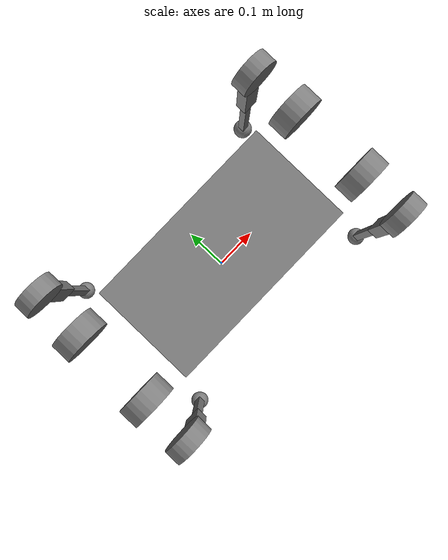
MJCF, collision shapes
<mujoco model="jamal">
  <compiler angle="radian" meshdir="../dae" autolimits="true"/>
  <option cone="elliptic" impratio="100"/>
  <default>
    <default class="jamal">
      <geom friction="0.4" margin="0.001" condim="1"/>
      <joint damping="0.1" armature="0.01" frictionloss="0.2"/>
      <motor ctrlrange="-33.5 33.5"/>
      <default class="abduction">
        <joint axis="1 0 0" range="-0.802851455917 0.802851455917"/>
      </default>
      <default class="hip">
        <joint axis="0 1 0" range="-1.0471975512 4.18879020479"/>
      </default>
      <default class="knee">
        <joint axis="0 1 0" range="-2.69653369433 -0.916297857297"/>
      </default>
      <default class="visual">
        <geom type="mesh" contype="0" conaffinity="0" group="2"/>
      </default>
      <default class="collision">
        <geom group="3"/>
        <default class="foot">
          <geom priority="1" condim="6" friction="0.4 0.02 0.01" type="sphere"/>
        </default>
      </default>
    </default>
  </default>
  <asset>
    <material name="black" rgba="0 0 0 1"/>
    <material name="white" rgba="1 1 1 1"/>
    <material name="gray" rgba="0.2 0.2 0.2 1"/>
    <material name="metal" rgba="0.9 0.95 0.95 1"/>
    <material name="jamal_dark" rgba="0.12 0.15 0.2 1"/>
    <mesh name="base" file="base.dae"/>
    <mesh name="hip" file="hip.dae"/>
    <mesh name="thigh" file="thigh.dae"/>
    <mesh name="thigh_mirror" file="thigh_mirror.dae"/>
    <mesh name="calf" file="calf.dae"/>
    <mesh name="foot" file="foot.dae"/>
  </asset>
  <worldbody>
    <body name="base_link" pos="0 0 0.46" childclass="jamal">
      <inertial mass="12.8185384756311" pos="0 0 0" fullinertia="0.0565667940678 0.0364645326398 0.0737588756462 -8.54731557026e-06 3.41160127654e-05 -4.86965244293e-06"/>
      <freejoint/>
      <geom mesh="base" material="white" class="visual"/>
      <geom size="0.1881 0.1 0.057" type="box" class="collision"/>
      <site name="imu" pos="0 0 0"/>
      <body name="FR_hip" pos="0.2699 -0.08028 0">
        <inertial mass="0.933762854916433" pos="0 0 0" fullinertia="0.000832273911083 0.00106512043176 0.000803680416601 -2.01742652907e-06 -9.96248193967e-07 3.27660400511e-06"/>
        <joint name="FR_hip_joint" class="abduction" range="-0.802851455917 0.802851455917"/>
        <geom class="visual" mesh="hip" material="white" pos="0 0 0" quat="4.632679488e-05 0.999999998927 0 0"/>
        <geom class="collision" type="cylinder" size="0.046 0.02" pos="0 0 0" quat="0.707106781187 0.707106781187 0 0"/>
        <body name="FR_thigh" pos="0 -0.10755 0">
          <inertial mass="1.32134262348697" pos="0 0 0" fullinertia="0.002628808989 0.00316091750464 0.00121962195057 -3.07530366786e-07 -6.61219112394e-05 -4.01609105248e-05"/>
          <joint name="FR_thigh_joint" class="hip" range="-1.0471975512 4.18879020479"/>
          <geom class="visual" mesh="thigh_mirror" material="white" pos="0 0 0"/>
          <geom class="collision" type="box" size="0.1125 0.01225 0.017" pos="0 0 -0.1125" quat="0.707106781187 0 0.707106781187 0"/>
          <geom class="collision" type="cylinder" size="0.041 0.016" pos="0 0.008 0" quat="0.707106781187 0.707106781187 0 0"/>
          <body name="FR_calf" pos="0 0 -0.225">
            <inertial mass="0.12879265462489" pos="0 0 0" fullinertia="0.000445341853266 0.000465686753688 2.3427896518e-05 -7.71823686634e-09 7.55836697902e-05 4.84096470395e-09"/>
            <joint name="FR_calf_joint" class="knee" range="-2.69653369433 -0.916297857297"/>
            <geom class="visual" mesh="calf" material="white" pos="0 0 0"/>
            <geom class="collision" type="box" size="0.115 0.008 0.008" pos="0 0 -0.1175" quat="0.707106781187 0 0.707106781187 0"/>
            <body name="FR_foot" pos="0 0 -0.23">
              <inertial mass="0.06" fullinertia="6.936e-06 6.936e-06 6.936e-06 0 0 0"/>
              <geom class="visual" mesh="foot" material="white" pos="0 0 0"/>
              <geom class="collision" type="sphere" size="0.02" pos="0 0 0"/>
            </body>
          </body>
        </body>
      </body>
      <body name="FL_hip" pos="0.2699 0.08028 0">
        <inertial mass="0.933762854916433" pos="0 0 0" fullinertia="0.000832273911083 0.00106512043176 0.000803680416601 2.01742652907e-06 -9.96248193967e-07 -3.27660400511e-06"/>
        <joint name="FL_hip_joint" class="abduction" range="-0.802851455917 0.802851455917"/>
        <geom class="visual" mesh="hip" material="white" pos="0 0 0"/>
        <geom class="collision" type="cylinder" size="0.046 0.02" pos="0 0 0" quat="0.707106781187 0.707106781187 0 0"/>
        <body name="FL_thigh" pos="0 0.10755 0">
          <inertial mass="1.32134262348697" pos="0 0 0" fullinertia="0.002628808989 0.00316091750464 0.00121962195057 3.07530366786e-07 -6.61219112394e-05 4.01609105248e-05"/>
          <joint name="FL_thigh_joint" class="hip" range="-1.0471975512 4.18879020479"/>
          <geom class="visual" mesh="thigh" material="white" pos="0 0 0"/>
          <geom class="collision" type="box" size="0.1125 0.01225 0.017" pos="0 0 -0.1125" quat="0.707106781187 0 0.707106781187 0"/>
          <geom class="collision" type="cylinder" size="0.041 0.016" pos="0 -0.008 0" quat="0.707106781187 0.707106781187 0 0"/>
          <body name="FL_calf" pos="0 0 -0.225">
            <inertial mass="0.12879265462489" pos="0 0 0" fullinertia="0.000445341853266 0.000465686753688 2.3427896518e-05 -7.71823686634e-09 7.55836697902e-05 4.84096470395e-09"/>
            <joint name="FL_calf_joint" class="knee" range="-2.69653369433 -0.916297857297"/>
            <geom class="visual" mesh="calf" material="white" pos="0 0 0"/>
            <geom class="collision" type="box" size="0.115 0.008 0.008" pos="0 0 -0.1175" quat="0.707106781187 0 0.707106781187 0"/>
            <body name="FL_foot" pos="0 0 -0.23">
              <inertial mass="0.06" fullinertia="6.936e-06 6.936e-06 6.936e-06 0 0 0"/>
              <geom class="visual" mesh="foot" material="white" pos="0 0 0"/>
              <geom class="collision" type="sphere" size="0.022" pos="0 0 0"/>
            </body>
          </body>
        </body>
      </body>
      <body name="RR_hip" pos="-0.2699 -0.08028 0">
        <inertial mass="0.933762854916433" pos="0 0 0" fullinertia="0.000832273911083 0.00106512043176 0.000803680416601 2.01742652907e-06 9.96248193967e-07 3.27660400511e-06"/>
        <joint name="RR_hip_joint" class="abduction" range="-0.802851455917 0.802851455917"/>
        <geom class="visual" mesh="hip" material="white" pos="0 0 0" quat="2.14617192385e-09 4.63267948302e-05 4.63267948302e-05 -0.999999997854"/>
        <geom class="collision" type="cylinder" size="0.046 0.02" pos="0 0 0" quat="0.707106781187 0.707106781187 0 0"/>
        <body name="RR_thigh" pos="0 -0.10755 0">
          <inertial mass="1.32134262348697" pos="0 0 0" fullinertia="0.002628808989 0.00316091750464 0.00121962195057 -3.07530366786e-07 -6.61219112394e-05 -4.01609105248e-05"/>
          <joint name="RR_thigh_joint" class="hip" range="-1.0471975512 4.18879020479"/>
          <geom class="visual" mesh="thigh_mirror" material="white" pos="0 0 0"/>
          <geom class="collision" type="box" size="0.1125 0.01225 0.017" pos="0 0 -0.1125" quat="0.707106781187 0 0.707106781187 0"/>
          <geom class="collision" type="cylinder" size="0.041 0.016" pos="0 0.008 0" quat="0.707106781187 0.707106781187 0 0"/>
          <body name="RR_calf" pos="0 0 -0.225">
            <inertial mass="0.12879265462489" pos="0 0 0" fullinertia="0.000445341853266 0.000465686753688 2.3427896518e-05 -7.71823686634e-09 7.55836697902e-05 4.84096470395e-09"/>
            <joint name="RR_calf_joint" class="knee" range="-2.69653369433 -0.916297857297"/>
            <geom class="visual" mesh="calf" material="white" pos="0 0 0"/>
            <geom class="collision" type="box" size="0.115 0.008 0.008" pos="0 0 -0.1175" quat="0.707106781187 0 0.707106781187 0"/>
            <body name="RR_foot" pos="0 0 -0.23">
              <inertial mass="0.06" fullinertia="6.936e-06 6.936e-06 6.936e-06 0 0 0"/>
              <geom class="visual" mesh="foot" material="white" pos="0 0 0"/>
              <geom class="collision" type="sphere" size="0.02" pos="0 0 0"/>
            </body>
          </body>
        </body>
      </body>
      <body name="RL_hip" pos="-0.2699 0.08028 0">
        <inertial mass="0.933762854916433" pos="0 0 0" fullinertia="0.000832273911083 0.00106512043176 0.000803680416601 -2.01742652907e-06 9.96248193967e-07 -3.27660400511e-06"/>
        <joint name="RL_hip_joint" class="abduction" range="-0.802851455917 0.802851455917"/>
        <geom class="visual" mesh="hip" material="white" pos="0 0 0" quat="4.632679488e-05 0 0.999999998927 0"/>
        <geom class="collision" type="cylinder" size="0.046 0.02" pos="0 0 0" quat="0.707106781187 0.707106781187 0 0"/>
        <body name="RL_thigh" pos="0 0.10755 0">
          <inertial mass="1.32134262348697" pos="0 0 0" fullinertia="0.002628808989 0.00316091750464 0.00121962195057 3.07530366786e-07 -6.61219112394e-05 4.01609105248e-05"/>
          <joint name="RL_thigh_joint" class="hip" range="-1.0471975512 4.18879020479"/>
          <geom class="visual" mesh="thigh" material="white" pos="0 0 0"/>
          <geom class="collision" type="box" size="0.1125 0.01225 0.017" pos="0 0 -0.1125" quat="0.707106781187 0 0.707106781187 0"/>
          <geom class="collision" type="cylinder" size="0.041 0.016" pos="0 -0.008 0" quat="0.707106781187 0.707106781187 0 0"/>
          <body name="RL_calf" pos="0 0 -0.225">
            <inertial mass="0.12879265462489" pos="0 0 0" fullinertia="0.000445341853266 0.000465686753688 2.3427896518e-05 -7.71823686634e-09 7.55836697902e-05 4.84096470395e-09"/>
            <joint name="RL_calf_joint" class="knee" range="-2.69653369433 -0.916297857297"/>
            <geom class="visual" mesh="calf" material="white" pos="0 0 0"/>
            <geom class="collision" type="box" size="0.115 0.008 0.008" pos="0 0 -0.1175" quat="0.707106781187 0 0.707106781187 0"/>
            <body name="RL_foot" pos="0 0 -0.23">
              <inertial mass="0.06" fullinertia="6.936e-06 6.936e-06 6.936e-06 0 0 0"/>
              <geom class="visual" mesh="foot" material="white" pos="0 0 0"/>
              <geom class="collision" type="sphere" size="0.02" pos="0 0 0"/>
            </body>
          </body>
        </body>
      </body>
    </body>
  </worldbody>
  <actuator>
    <motor class="abduction" name="FR_hip" joint="FR_hip_joint"/>
    <motor class="hip" name="FR_thigh" joint="FR_thigh_joint"/>
    <motor class="knee" name="FR_calf" joint="FR_calf_joint"/>
    <motor class="abduction" name="FL_hip" joint="FL_hip_joint"/>
    <motor class="hip" name="FL_thigh" joint="FL_thigh_joint"/>
    <motor class="knee" name="FL_calf" joint="FL_calf_joint"/>
    <motor class="abduction" name="RR_hip" joint="RR_hip_joint"/>
    <motor class="hip" name="RR_thigh" joint="RR_thigh_joint"/>
    <motor class="knee" name="RR_calf" joint="RR_calf_joint"/>
    <motor class="abduction" name="RL_hip" joint="RL_hip_joint"/>
    <motor class="hip" name="RL_thigh" joint="RL_thigh_joint"/>
    <motor class="knee" name="RL_calf" joint="RL_calf_joint"/>
  </actuator>
  <sensor>
    <jointpos name="FR_hip_pos" joint="FR_hip_joint"/>
    <jointpos name="FR_thigh_pos" joint="FR_thigh_joint"/>
    <jointpos name="FR_calf_pos" joint="FR_calf_joint"/>
    <jointpos name="FL_hip_pos" joint="FL_hip_joint"/>
    <jointpos name="FL_thigh_pos" joint="FL_thigh_joint"/>
    <jointpos name="FL_calf_pos" joint="FL_calf_joint"/>
    <jointpos name="RR_hip_pos" joint="RR_hip_joint"/>
    <jointpos name="RR_thigh_pos" joint="RR_thigh_joint"/>
    <jointpos name="RR_calf_pos" joint="RR_calf_joint"/>
    <jointpos name="RL_hip_pos" joint="RL_hip_joint"/>
    <jointpos name="RL_thigh_pos" joint="RL_thigh_joint"/>
    <jointpos name="RL_calf_pos" joint="RL_calf_joint"/>
    <jointvel name="FR_hip_vel" joint="FR_hip_joint"/>
    <jointvel name="FR_thigh_vel" joint="FR_thigh_joint"/>
    <jointvel name="FR_calf_vel" joint="FR_calf_joint"/>
    <jointvel name="FL_hip_vel" joint="FL_hip_joint"/>
    <jointvel name="FL_thigh_vel" joint="FL_thigh_joint"/>
    <jointvel name="FL_calf_vel" joint="FL_calf_joint"/>
    <jointvel name="RR_hip_vel" joint="RR_hip_joint"/>
    <jointvel name="RR_thigh_vel" joint="RR_thigh_joint"/>
    <jointvel name="RR_calf_vel" joint="RR_calf_joint"/>
    <jointvel name="RL_hip_vel" joint="RL_hip_joint"/>
    <jointvel name="RL_thigh_vel" joint="RL_thigh_joint"/>
    <jointvel name="RL_calf_vel" joint="RL_calf_joint"/>
    <jointactuatorfrc name="FR_hip_torque" joint="FR_hip_joint" noise="0.01"/>
    <jointactuatorfrc name="FR_thigh_torque" joint="FR_thigh_joint" noise="0.01"/>
    <jointactuatorfrc name="FR_calf_torque" joint="FR_calf_joint" noise="0.01"/>
    <jointactuatorfrc name="FL_hip_torque" joint="FL_hip_joint" noise="0.01"/>
    <jointactuatorfrc name="FL_thigh_torque" joint="FL_thigh_joint" noise="0.01"/>
    <jointactuatorfrc name="FL_calf_torque" joint="FL_calf_joint" noise="0.01"/>
    <jointactuatorfrc name="RR_hip_torque" joint="RR_hip_joint" noise="0.01"/>
    <jointactuatorfrc name="RR_thigh_torque" joint="RR_thigh_joint" noise="0.01"/>
    <jointactuatorfrc name="RR_calf_torque" joint="RR_calf_joint" noise="0.01"/>
    <jointactuatorfrc name="RL_hip_torque" joint="RL_hip_joint" noise="0.01"/>
    <jointactuatorfrc name="RL_thigh_torque" joint="RL_thigh_joint" noise="0.01"/>
    <jointactuatorfrc name="RL_calf_torque" joint="RL_calf_joint" noise="0.01"/>
    <framequat name="imu_quat" objtype="site" objname="imu"/>
    <gyro name="imu_gyro" site="imu"/>
    <accelerometer name="imu_acc" site="imu"/>
    <framepos name="frame_pos" objtype="site" objname="imu"/>
    <framelinvel name="frame_vel" objtype="site" objname="imu"/>
  </sensor>
  <keyframe>
    <key name="home" qpos="0 0 0.46 1 0 0 0 0 0.9 -1.8 0 0.9 -1.8 0 0.9 -1.8 0 0.9 -1.8" ctrl="0 0.9 -1.8 0 0.9 -1.8 0 0.9 -1.8 0 0.9 -1.8"/>
  </keyframe>
</mujoco>
